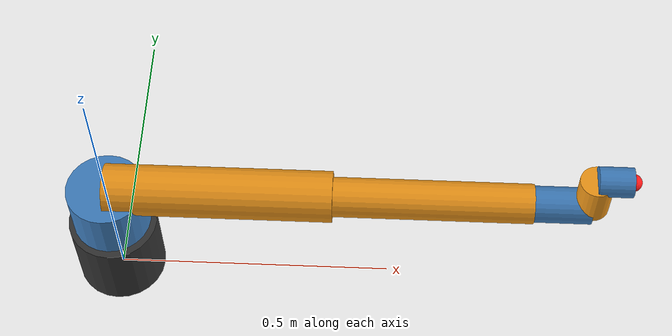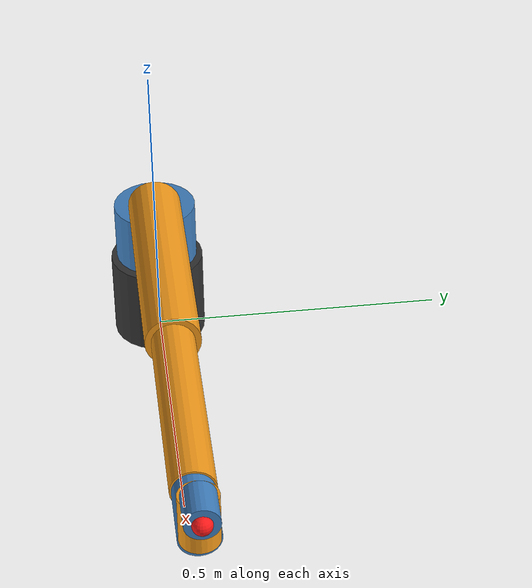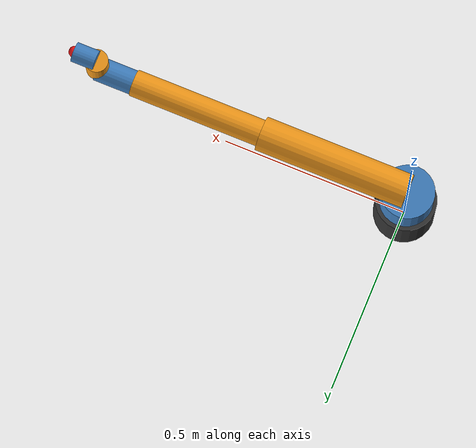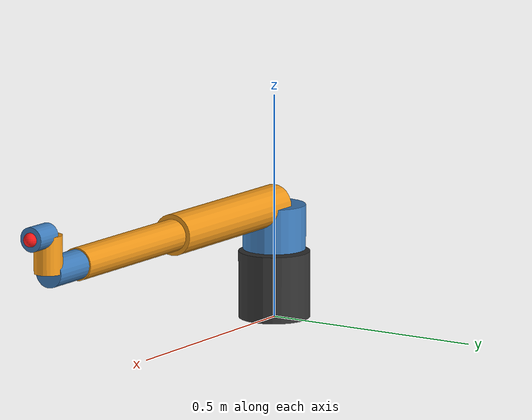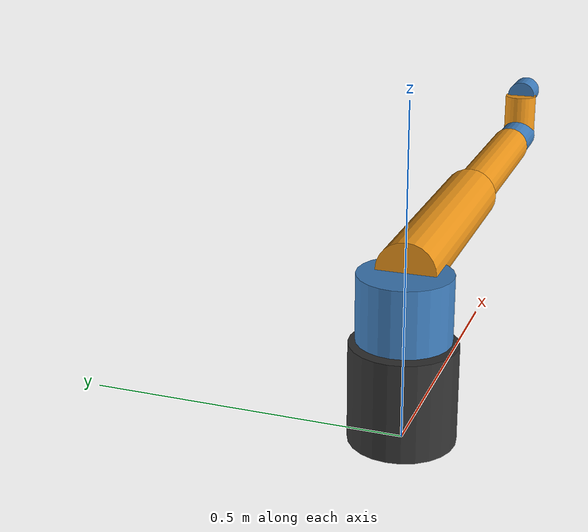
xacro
<?xml version="1.0"?>
<robot name="agenticros_arm" xmlns:xacro="http://www.ros.org/wiki/xacro">

  <!-- ===== material palette (matches the SDF colours) ===== -->
  <material name="agros_dark">  <color rgba="0.20 0.20 0.20 1"/></material>
  <material name="agros_blue">  <color rgba="0.25 0.50 0.75 1"/></material>
  <material name="agros_orange"><color rgba="0.95 0.60 0.10 1"/></material>
  <material name="agros_red">   <color rgba="1.00 0.10 0.10 1"/></material>

  <!-- ============================================================
       base_link  (static pedestal, fixed to world)
       ============================================================ -->
  <link name="base_link">
    <visual>
      <origin xyz="0 0 0.075" rpy="0 0 0"/>
      <geometry><cylinder radius="0.08" length="0.15"/></geometry>
      <material name="agros_dark"/>
    </visual>
    <collision>
      <origin xyz="0 0 0.075" rpy="0 0 0"/>
      <geometry><cylinder radius="0.08" length="0.15"/></geometry>
    </collision>
    <inertial>
      <mass value="10.0"/>
      <inertia ixx="0.05" iyy="0.05" izz="0.05" ixy="0" ixz="0" iyz="0"/>
    </inertial>
  </link>

  <!-- ============================================================
       shoulder_link  (rotated around Z)
       ============================================================ -->
  <link name="shoulder_link">
    <visual>
      <origin xyz="0 0 0" rpy="0 0 0"/>
      <geometry><cylinder radius="0.07" length="0.10"/></geometry>
      <material name="agros_blue"/>
    </visual>
    <inertial>
      <mass value="3.0"/>
      <inertia ixx="0.008" iyy="0.008" izz="0.005" ixy="0" ixz="0" iyz="0"/>
    </inertial>
  </link>
  <joint name="shoulder_pan_joint" type="revolute">
    <parent link="base_link"/>
    <child  link="shoulder_link"/>
    <origin xyz="0 0 0.205" rpy="0 0 0"/>
    <axis xyz="0 0 1"/>
    <limit lower="-3.14159" upper="3.14159" velocity="2.0" effort="30.0"/>
  </joint>

  <!-- ============================================================
       upper_arm_link  (rotated around Y) - laid along +X
       ============================================================ -->
  <link name="upper_arm_link">
    <visual>
      <origin xyz="0.20 0 0" rpy="0 1.5707963 0"/>
      <geometry><cylinder radius="0.045" length="0.40"/></geometry>
      <material name="agros_orange"/>
    </visual>
    <inertial>
      <mass value="4.0"/>
      <inertia ixx="0.02" iyy="0.06" izz="0.06" ixy="0" ixz="0" iyz="0"/>
    </inertial>
  </link>
  <joint name="shoulder_lift_joint" type="revolute">
    <parent link="shoulder_link"/>
    <child  link="upper_arm_link"/>
    <origin xyz="0 0 0.05" rpy="0 0 0"/>
    <axis xyz="0 1 0"/>
    <limit lower="-1.5707" upper="1.5707" velocity="2.0" effort="30.0"/>
  </joint>

  <!-- ============================================================
       forearm_link  (rotated around Y)
       ============================================================ -->
  <link name="forearm_link">
    <visual>
      <origin xyz="0.175 0 0" rpy="0 1.5707963 0"/>
      <geometry><cylinder radius="0.035" length="0.35"/></geometry>
      <material name="agros_orange"/>
    </visual>
    <inertial>
      <mass value="2.5"/>
      <inertia ixx="0.012" iyy="0.04" izz="0.04" ixy="0" ixz="0" iyz="0"/>
    </inertial>
  </link>
  <joint name="elbow_joint" type="revolute">
    <parent link="upper_arm_link"/>
    <child  link="forearm_link"/>
    <origin xyz="0.40 0 0" rpy="0 0 0"/>
    <axis xyz="0 1 0"/>
    <limit lower="-3.14159" upper="3.14159" velocity="2.0" effort="30.0"/>
  </joint>

  <!-- ============================================================
       wrist_1_link  (rotated around Y)
       ============================================================ -->
  <link name="wrist_1_link">
    <visual>
      <origin xyz="0.05 0 0" rpy="0 1.5707963 0"/>
      <geometry><cylinder radius="0.032" length="0.10"/></geometry>
      <material name="agros_blue"/>
    </visual>
    <inertial>
      <mass value="0.8"/>
      <inertia ixx="0.001" iyy="0.001" izz="0.001" ixy="0" ixz="0" iyz="0"/>
    </inertial>
  </link>
  <joint name="wrist_1_joint" type="revolute">
    <parent link="forearm_link"/>
    <child  link="wrist_1_link"/>
    <origin xyz="0.35 0 0" rpy="0 0 0"/>
    <axis xyz="0 1 0"/>
    <limit lower="-3.14159" upper="3.14159" velocity="2.0" effort="15.0"/>
  </joint>

  <!-- ============================================================
       wrist_2_link  (rotated around Z)
       ============================================================ -->
  <link name="wrist_2_link">
    <visual>
      <origin xyz="0 0 0.04" rpy="0 0 0"/>
      <geometry><cylinder radius="0.030" length="0.08"/></geometry>
      <material name="agros_orange"/>
    </visual>
    <inertial>
      <mass value="0.6"/>
      <inertia ixx="0.0008" iyy="0.0008" izz="0.0008" ixy="0" ixz="0" iyz="0"/>
    </inertial>
  </link>
  <joint name="wrist_2_joint" type="revolute">
    <parent link="wrist_1_link"/>
    <child  link="wrist_2_link"/>
    <origin xyz="0.10 0 0" rpy="0 0 0"/>
    <axis xyz="0 0 1"/>
    <limit lower="-3.14159" upper="3.14159" velocity="2.0" effort="15.0"/>
  </joint>

  <!-- ============================================================
       wrist_3_link  (rotated around Y)
       ============================================================ -->
  <link name="wrist_3_link">
    <visual>
      <origin xyz="0.03 0 0" rpy="0 1.5707963 0"/>
      <geometry><cylinder radius="0.026" length="0.06"/></geometry>
      <material name="agros_blue"/>
    </visual>
    <inertial>
      <mass value="0.4"/>
      <inertia ixx="0.0004" iyy="0.0004" izz="0.0004" ixy="0" ixz="0" iyz="0"/>
    </inertial>
  </link>
  <joint name="wrist_3_joint" type="revolute">
    <parent link="wrist_2_link"/>
    <child  link="wrist_3_link"/>
    <origin xyz="0 0 0.08" rpy="0 0 0"/>
    <axis xyz="0 1 0"/>
    <limit lower="-3.14159" upper="3.14159" velocity="2.0" effort="10.0"/>
  </joint>

  <link name="tool0">
    <visual>
      <geometry><sphere radius="0.015"/></geometry>
      <material name="agros_red"/>
    </visual>
  </link>
  <joint name="tool0_joint" type="fixed">
    <parent link="wrist_3_link"/>
    <child  link="tool0"/>
    <origin xyz="0.06 0 0" rpy="0 0 0"/>
  </joint>

</robot>
